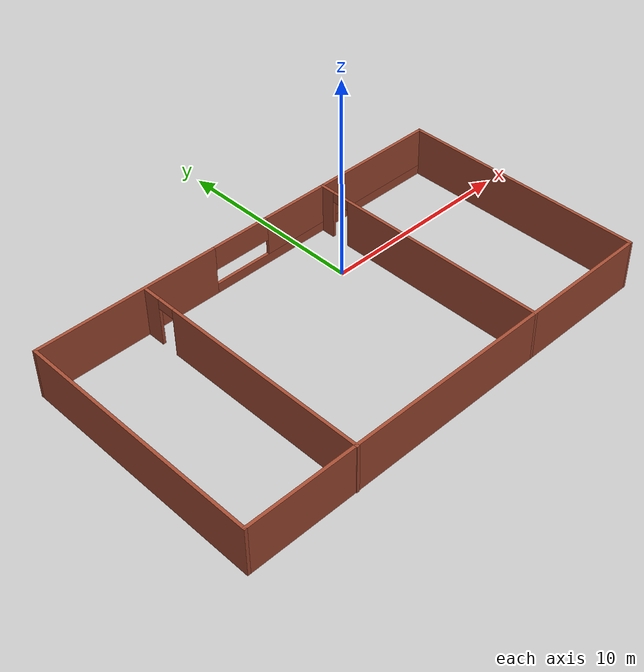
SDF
<?xml version='1.0'?>
<sdf version='1.7'>
  <model name='mybuilding'>
    <pose>-2.89227 -3.24183 0 0 -0 0</pose>
    <link name='Wall_0'>
      <pose>0 6.19029 0 0 -0 0</pose>
      <visual name='Wall_0_Visual_0'>
        <pose>-6.51554 0 1.25 0 -0 0</pose>
        <geometry>
          <box>
            <size>9.21892 0.15 2.5</size>
          </box>
        </geometry>
        <material>
          <script>
            <uri>file://media/materials/scripts/gazebo.material</uri>
            <name>Gazebo/Bricks</name>
          </script>
          <ambient>1 1 1 1</ambient>
        </material>
        <meta>
          <layer>0</layer>
        </meta>
      </visual>
      <collision name='Wall_0_Collision_0'>
        <geometry>
          <box>
            <size>9.21892 0.15 2.5</size>
          </box>
        </geometry>
        <pose>-6.51554 0 1.25 0 -0 0</pose>
      </collision>
      <visual name='Wall_0_Visual_1'>
        <pose>4.60946 0 0.25 0 -0 0</pose>
        <geometry>
          <box>
            <size>13.0311 0.15 0.5</size>
          </box>
        </geometry>
        <material>
          <script>
            <uri>file://media/materials/scripts/gazebo.material</uri>
            <name>Gazebo/Bricks</name>
          </script>
          <ambient>1 1 1 1</ambient>
        </material>
        <meta>
          <layer>0</layer>
        </meta>
      </visual>
      <collision name='Wall_0_Collision_1'>
        <geometry>
          <box>
            <size>13.0311 0.15 0.5</size>
          </box>
        </geometry>
        <pose>4.60946 0 0.25 0 -0 0</pose>
      </collision>
      <visual name='Wall_0_Visual_2'>
        <pose>6.10946 0 1.5 0 -0 0</pose>
        <geometry>
          <box>
            <size>10.0311 0.15 2</size>
          </box>
        </geometry>
        <material>
          <script>
            <uri>file://media/materials/scripts/gazebo.material</uri>
            <name>Gazebo/Bricks</name>
          </script>
          <ambient>1 1 1 1</ambient>
        </material>
        <meta>
          <layer>0</layer>
        </meta>
      </visual>
      <collision name='Wall_0_Collision_2'>
        <geometry>
          <box>
            <size>10.0311 0.15 2</size>
          </box>
        </geometry>
        <pose>6.10946 0 1.5 0 -0 0</pose>
      </collision>
      <visual name='Wall_0_Visual_3'>
        <pose>-0.406084 0 1.9 0 -0 0</pose>
        <geometry>
          <box>
            <size>3 0.15 1.2</size>
          </box>
        </geometry>
        <material>
          <script>
            <uri>file://media/materials/scripts/gazebo.material</uri>
            <name>Gazebo/Bricks</name>
          </script>
          <ambient>1 1 1 1</ambient>
        </material>
        <meta>
          <layer>0</layer>
        </meta>
      </visual>
      <collision name='Wall_0_Collision_3'>
        <geometry>
          <box>
            <size>3 0.15 1.2</size>
          </box>
        </geometry>
        <pose>-0.406084 0 1.9 0 -0 0</pose>
      </collision>
    </link>
    <link name='Wall_3'>
      <collision name='Wall_3_Collision'>
        <geometry>
          <box>
            <size>12.5 0.15 2.5</size>
          </box>
        </geometry>
        <pose>0 0 1.25 0 -0 0</pose>
      </collision>
      <visual name='Wall_3_Visual'>
        <pose>0 0 1.25 0 -0 0</pose>
        <geometry>
          <box>
            <size>12.5 0.15 2.5</size>
          </box>
        </geometry>
        <material>
          <script>
            <uri>file://media/materials/scripts/gazebo.material</uri>
            <name>Gazebo/Bricks</name>
          </script>
          <ambient>1 1 1 1</ambient>
        </material>
        <meta>
          <layer>0</layer>
        </meta>
      </visual>
      <pose>-11.05 0.015295 0 0 -0 -1.5708</pose>
    </link>
    <link name='Wall_4'>
      <collision name='Wall_4_Collision'>
        <geometry>
          <box>
            <size>22.25 0.15 2.5</size>
          </box>
        </geometry>
        <pose>0 0 1.25 0 -0 0</pose>
      </collision>
      <visual name='Wall_4_Visual'>
        <pose>0 0 1.25 0 -0 0</pose>
        <geometry>
          <box>
            <size>22.25 0.15 2.5</size>
          </box>
        </geometry>
        <material>
          <script>
            <uri>file://media/materials/scripts/gazebo.material</uri>
            <name>Gazebo/Bricks</name>
          </script>
          <ambient>1 1 1 1</ambient>
        </material>
        <meta>
          <layer>0</layer>
        </meta>
      </visual>
      <pose>0 -6.1597 0 0 -0 0</pose>
    </link>
    <link name='Wall_5'>
      <collision name='Wall_5_Collision'>
        <geometry>
          <box>
            <size>12.5 0.15 2.5</size>
          </box>
        </geometry>
        <pose>0 0 1.25 0 -0 0</pose>
      </collision>
      <visual name='Wall_5_Visual'>
        <pose>0 0 1.25 0 -0 0</pose>
        <geometry>
          <box>
            <size>12.5 0.15 2.5</size>
          </box>
        </geometry>
        <material>
          <script>
            <uri>file://media/materials/scripts/gazebo.material</uri>
            <name>Gazebo/Bricks</name>
          </script>
          <ambient>1 1 1 1</ambient>
        </material>
        <meta>
          <layer>0</layer>
        </meta>
      </visual>
      <pose>11.05 0.015295 0 0 -0 1.5708</pose>
    </link>
    <link name='Wall_7'>
      <pose>-5.66612 -0.015295 0 0 -0 -1.5708</pose>
      <visual name='Wall_7_Visual_0'>
        <pose>-5.74 0 1.25 0 -0 0</pose>
        <geometry>
          <box>
            <size>1.02001 0.15 2.5</size>
          </box>
        </geometry>
        <material>
          <script>
            <uri>file://media/materials/scripts/gazebo.material</uri>
            <name>Gazebo/Bricks</name>
          </script>
          <ambient>1 1 1 1</ambient>
        </material>
        <meta>
          <layer>0</layer>
        </meta>
      </visual>
      <collision name='Wall_7_Collision_0'>
        <geometry>
          <box>
            <size>1.02001 0.15 2.5</size>
          </box>
        </geometry>
        <pose>-5.74 0 1.25 0 -0 0</pose>
      </collision>
      <visual name='Wall_7_Visual_1'>
        <pose>0.960005 0 1.25 0 -0 0</pose>
        <geometry>
          <box>
            <size>10.58 0.15 2.5</size>
          </box>
        </geometry>
        <material>
          <script>
            <uri>file://media/materials/scripts/gazebo.material</uri>
            <name>Gazebo/Bricks</name>
          </script>
          <ambient>1 1 1 1</ambient>
        </material>
        <meta>
          <layer>0</layer>
        </meta>
      </visual>
      <collision name='Wall_7_Collision_1'>
        <geometry>
          <box>
            <size>10.58 0.15 2.5</size>
          </box>
        </geometry>
        <pose>0.960005 0 1.25 0 -0 0</pose>
      </collision>
      <visual name='Wall_7_Visual_2'>
        <pose>-4.77999 0 2.25 0 -0 0</pose>
        <geometry>
          <box>
            <size>0.9 0.15 0.5</size>
          </box>
        </geometry>
        <material>
          <script>
            <uri>file://media/materials/scripts/gazebo.material</uri>
            <name>Gazebo/Bricks</name>
          </script>
          <ambient>1 1 1 1</ambient>
        </material>
        <meta>
          <layer>0</layer>
        </meta>
      </visual>
      <collision name='Wall_7_Collision_2'>
        <geometry>
          <box>
            <size>0.9 0.15 0.5</size>
          </box>
        </geometry>
        <pose>-4.77999 0 2.25 0 -0 0</pose>
      </collision>
    </link>
    <link name='Wall_9'>
      <pose>4.55126 0.014829 0 0 -0 -1.5708</pose>
      <visual name='Wall_9_Visual_0'>
        <pose>-5.82987 0 1.25 0 -0 0</pose>
        <geometry>
          <box>
            <size>0.840253 0.15 2.5</size>
          </box>
        </geometry>
        <material>
          <script>
            <uri>file://media/materials/scripts/gazebo.material</uri>
            <name>Gazebo/Bricks</name>
          </script>
          <ambient>1 1 1 1</ambient>
        </material>
        <meta>
          <layer>0</layer>
        </meta>
      </visual>
      <collision name='Wall_9_Collision_0'>
        <geometry>
          <box>
            <size>0.840253 0.15 2.5</size>
          </box>
        </geometry>
        <pose>-5.82987 0 1.25 0 -0 0</pose>
      </collision>
      <visual name='Wall_9_Visual_1'>
        <pose>0.870127 0 1.25 0 -0 0</pose>
        <geometry>
          <box>
            <size>10.7597 0.15 2.5</size>
          </box>
        </geometry>
        <material>
          <script>
            <uri>file://media/materials/scripts/gazebo.material</uri>
            <name>Gazebo/Bricks</name>
          </script>
          <ambient>1 1 1 1</ambient>
        </material>
        <meta>
          <layer>0</layer>
        </meta>
      </visual>
      <collision name='Wall_9_Collision_1'>
        <geometry>
          <box>
            <size>10.7597 0.15 2.5</size>
          </box>
        </geometry>
        <pose>0.870127 0 1.25 0 -0 0</pose>
      </collision>
      <visual name='Wall_9_Visual_2'>
        <pose>-4.95975 0 2.25 0 -0 0</pose>
        <geometry>
          <box>
            <size>0.9 0.15 0.5</size>
          </box>
        </geometry>
        <material>
          <script>
            <uri>file://media/materials/scripts/gazebo.material</uri>
            <name>Gazebo/Bricks</name>
          </script>
          <ambient>1 1 1 1</ambient>
        </material>
        <meta>
          <layer>0</layer>
        </meta>
      </visual>
      <collision name='Wall_9_Collision_2'>
        <geometry>
          <box>
            <size>0.9 0.15 0.5</size>
          </box>
        </geometry>
        <pose>-4.95975 0 2.25 0 -0 0</pose>
      </collision>
    </link>
    <static>1</static>
  </model>
</sdf>
